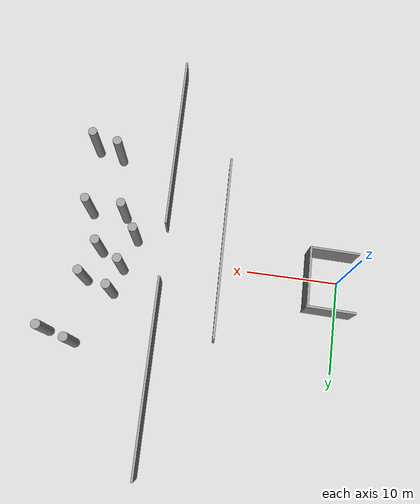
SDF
<sdf version="1.6">
 <world name="default">
  <model name="ground_plane">
   <static>1</static>
   <link name="link">
    <collision name="collision">
     <geometry><plane><normal>0 0 1</normal><size>200 200</size></plane></geometry>
     <surface><friction><ode><mu>100</mu><mu2>50</mu2></ode></friction></surface>
    </collision>
    <visual name="visual">
     <cast_shadows>0</cast_shadows>
     <geometry><plane><normal>0 0 1</normal><size>200 200</size></plane></geometry>
     <material>
      <script><uri>file://media/materials/scripts/gazebo.material</uri><name>Gazebo/Grey</name></script>
     </material>
    </visual>
    <gravity>0</gravity>
   </link>
  </model>
  <model name="unit_box_0_0_clone_0_clone_clone">
   <static>1</static>
   <pose>20.034 -13.669 1.66667 -0.000226 9e-06 0.034061</pose>
   <link name="link">
    <inertial>
     <mass>1</mass>
     <inertia>
      <ixx>0.166667</ixx>
      <ixy>0</ixy>
      <ixz>0</ixz>
      <iyy>0.166667</iyy>
      <iyz>0</iyz>
      <izz>0.166667</izz>
     </inertia>
    </inertial>
    <collision name="collision">
     <geometry><box><size>0.237691 20.4927 3.33454</size></box></geometry>
     <surface><contact><collide_without_contact>1</collide_without_contact></contact></surface>
    </collision>
    <visual name="visual">
     <geometry><box><size>0.237691 20.4927 3.33454</size></box></geometry>
     <material>
      <script><name>Gazebo/Grey</name><uri>file://media/materials/scripts/gazebo.material</uri></script>
     </material>
    </visual>
    <gravity>0</gravity>
   </link>
  </model>
  <model name="unit_box_0_0_clone_0_clone_clone_0_clone_clone">
   <static>1</static>
   <pose>3.56833 0.275438 1.66667 -0.000226 6e-06 0.022264</pose>
   <link name="link">
    <inertial>
     <mass>1</mass>
     <inertia>
      <ixx>0.166667</ixx>
      <ixy>0</ixy>
      <ixz>0</ixz>
      <iyy>0.166667</iyy>
      <iyz>0</iyz>
      <izz>0.166667</izz>
     </inertia>
    </inertial>
    <collision name="collision">
     <geometry><box><size>0.237691 6.53987 3.33454</size></box></geometry>
     <surface><contact><collide_without_contact>1</collide_without_contact></contact></surface>
    </collision>
    <visual name="visual">
     <geometry><box><size>0.237691 6.53987 3.33454</size></box></geometry>
     <material>
      <script><name>Gazebo/Grey</name><uri>file://media/materials/scripts/gazebo.material</uri></script>
     </material>
    </visual>
    <gravity>0</gravity>
   </link>
  </model>
  <model name="unit_cylinder_0_clone_14_clone_9">
   <static>1</static>
   <pose>30.626 9.6448 2.40172 0 -0 0.001073</pose>
   <link name="link">
    <inertial>
     <mass>1</mass>
     <inertia><ixx>0.145833</ixx><ixy>0</ixy><ixz>0</ixz><iyy>0.145833</iyy><iyz>0</iyz><izz>0.125</izz></inertia>
    </inertial>
    <collision name="collision">
     <geometry><cylinder><radius>0.5</radius><length>6.03342</length></cylinder></geometry>
     <surface><contact><collide_without_contact>1</collide_without_contact></contact></surface>
    </collision>
    <visual name="visual">
     <geometry><cylinder><radius>0.5</radius><length>6.03342</length></cylinder></geometry>
     <material>
      <script><name>Gazebo/Grey</name><uri>file://media/materials/scripts/gazebo.material</uri></script>
     </material>
    </visual>
    <gravity>0</gravity>
   </link>
  </model>
  <model name="unit_cylinder_0_clone_14_clone_10">
   <static>1</static>
   <pose>27.6346 10.4863 2.40172 0 -0 0.001073</pose>
   <link name="link">
    <inertial>
     <mass>1</mass>
     <inertia><ixx>0.145833</ixx><ixy>0</ixy><ixz>0</ixz><iyy>0.145833</iyy><iyz>0</iyz><izz>0.125</izz></inertia>
    </inertial>
    <collision name="collision">
     <geometry><cylinder><radius>0.5</radius><length>6.03342</length></cylinder></geometry>
     <surface><contact><collide_without_contact>1</collide_without_contact></contact></surface>
    </collision>
    <visual name="visual">
     <geometry><cylinder><radius>0.5</radius><length>6.03342</length></cylinder></geometry>
     <material>
      <script><name>Gazebo/Grey</name><uri>file://media/materials/scripts/gazebo.material</uri></script>
     </material>
    </visual>
    <gravity>0</gravity>
   </link>
  </model>
  <model name="unit_cylinder_0_clone_14_clone_13">
   <static>1</static>
   <pose>29.184 -12.1897 2.40172 0 -0 0.001073</pose>
   <link name="link">
    <inertial>
     <mass>1</mass>
     <inertia><ixx>0.145833</ixx><ixy>0</ixy><ixz>0</ixz><iyy>0.145833</iyy><iyz>0</iyz><izz>0.125</izz></inertia>
    </inertial>
    <collision name="collision">
     <geometry><cylinder><radius>0.5</radius><length>6.03342</length></cylinder></geometry>
     <surface><contact><collide_without_contact>1</collide_without_contact></contact></surface>
    </collision>
    <visual name="visual">
     <geometry><cylinder><radius>0.5</radius><length>6.03342</length></cylinder></geometry>
     <material>
      <script><name>Gazebo/Grey</name><uri>file://media/materials/scripts/gazebo.material</uri></script>
     </material>
    </visual>
    <gravity>0</gravity>
   </link>
  </model>
  <model name="unit_cylinder_0_clone_14_clone_14">
   <static>1</static>
   <pose>26.2784 -11.4682 2.40172 0 -0 0.001073</pose>
   <link name="link">
    <inertial>
     <mass>1</mass>
     <inertia><ixx>0.145833</ixx><ixy>0</ixy><ixz>0</ixz><iyy>0.145833</iyy><iyz>0</iyz><izz>0.125</izz></inertia>
    </inertial>
    <collision name="collision">
     <geometry><cylinder><radius>0.5</radius><length>6.03342</length></cylinder></geometry>
     <surface><contact><collide_without_contact>1</collide_without_contact></contact></surface>
    </collision>
    <visual name="visual">
     <geometry><cylinder><radius>0.5</radius><length>6.03342</length></cylinder></geometry>
     <material>
      <script><name>Gazebo/Grey</name><uri>file://media/materials/scripts/gazebo.material</uri></script>
     </material>
    </visual>
    <gravity>0</gravity>
   </link>
  </model>
  <model name="unit_box_0_0_clone_0_clone_clone_clone">
   <static>1</static>
   <pose>19.0842 12.813 1.66667 -0.000226 9e-06 0.034061</pose>
   <link name="link">
    <inertial>
     <mass>1</mass>
     <inertia>
      <ixx>0.166667</ixx>
      <ixy>0</ixy>
      <ixz>0</ixz>
      <iyy>0.166667</iyy>
      <iyz>0</iyz>
      <izz>0.166667</izz>
     </inertia>
    </inertial>
    <collision name="collision">
     <geometry><box><size>0.237691 20.4927 3.33454</size></box></geometry>
     <surface><contact><collide_without_contact>1</collide_without_contact></contact></surface>
    </collision>
    <visual name="visual">
     <geometry><box><size>0.237691 20.4927 3.33454</size></box></geometry>
     <material>
      <script><name>Gazebo/Grey</name><uri>file://media/materials/scripts/gazebo.material</uri></script>
     </material>
    </visual>
    <gravity>0</gravity>
   </link>
  </model>
  <model name="unit_box_0_0_clone_0_clone_clone_0_clone_clone_clone_clone">
   <static>1</static>
   <pose>1.05764 -2.86138 1.66667 -2e-06 0.000226 1.55672</pose>
   <link name="link">
    <inertial>
     <mass>1</mass>
     <inertia>
      <ixx>0.166667</ixx>
      <ixy>0</ixy>
      <ixz>0</ixz>
      <iyy>0.166667</iyy>
      <iyz>0</iyz>
      <izz>0.166667</izz>
     </inertia>
    </inertial>
    <collision name="collision">
     <geometry><box><size>0.237691 5.28913 3.33454</size></box></geometry>
     <surface><contact><collide_without_contact>1</collide_without_contact></contact></surface>
    </collision>
    <visual name="visual">
     <geometry><box><size>0.237691 5.28913 3.33454</size></box></geometry>
     <material>
      <script><name>Gazebo/Grey</name><uri>file://media/materials/scripts/gazebo.material</uri></script>
     </material>
    </visual>
    <gravity>0</gravity>
   </link>
  </model>
  <model name="unit_cylinder_0_clone_14_clone_9_clone">
   <static>1</static>
   <pose>27.6139 3.55096 2.40172 0 -0 0.001073</pose>
   <link name="link">
    <inertial>
     <mass>1</mass>
     <inertia><ixx>0.145833</ixx><ixy>0</ixy><ixz>0</ixz><iyy>0.145833</iyy><iyz>0</iyz><izz>0.125</izz></inertia>
    </inertial>
    <collision name="collision">
     <geometry><cylinder><radius>0.5</radius><length>6.03342</length></cylinder></geometry>
     <surface><contact><collide_without_contact>1</collide_without_contact></contact></surface>
    </collision>
    <visual name="visual">
     <geometry><cylinder><radius>0.5</radius><length>6.03342</length></cylinder></geometry>
     <material>
      <script><name>Gazebo/Grey</name><uri>file://media/materials/scripts/gazebo.material</uri></script>
     </material>
    </visual>
    <gravity>0</gravity>
   </link>
  </model>
  <model name="unit_cylinder_0_clone_14_clone_9_clone_0">
   <static>1</static>
   <pose>28.4771 -4.34225 2.40172 0 -0 0.001073</pose>
   <link name="link">
    <inertial>
     <mass>1</mass>
     <inertia><ixx>0.145833</ixx><ixy>0</ixy><ixz>0</ixz><iyy>0.145833</iyy><iyz>0</iyz><izz>0.125</izz></inertia>
    </inertial>
    <collision name="collision">
     <geometry><cylinder><radius>0.5</radius><length>6.03342</length></cylinder></geometry>
     <surface><contact><collide_without_contact>1</collide_without_contact></contact></surface>
    </collision>
    <visual name="visual">
     <geometry><cylinder><radius>0.5</radius><length>6.03342</length></cylinder></geometry>
     <material>
      <script><name>Gazebo/Grey</name><uri>file://media/materials/scripts/gazebo.material</uri></script>
     </material>
    </visual>
    <gravity>0</gravity>
   </link>
  </model>
  <model name="unit_cylinder_0_clone_14_clone_9_clone_1">
   <static>1</static>
   <pose>24.5651 -4.32645 2.40172 0 -0 0.001073</pose>
   <link name="link">
    <inertial>
     <mass>1</mass>
     <inertia><ixx>0.145833</ixx><ixy>0</ixy><ixz>0</ixz><iyy>0.145833</iyy><iyz>0</iyz><izz>0.125</izz></inertia>
    </inertial>
    <collision name="collision">
     <geometry><cylinder><radius>0.5</radius><length>6.03342</length></cylinder></geometry>
     <surface><contact><collide_without_contact>1</collide_without_contact></contact></surface>
    </collision>
    <visual name="visual">
     <geometry><cylinder><radius>0.5</radius><length>6.03342</length></cylinder></geometry>
     <material>
      <script><name>Gazebo/Grey</name><uri>file://media/materials/scripts/gazebo.material</uri></script>
     </material>
    </visual>
    <gravity>0</gravity>
   </link>
  </model>
  <model name="unit_cylinder_0_clone_14_clone_9_clone_2">
   <static>1</static>
   <pose>24.4719 4.62219 2.40172 0 -0 0.001073</pose>
   <link name="link">
    <inertial>
     <mass>1</mass>
     <inertia><ixx>0.145833</ixx><ixy>0</ixy><ixz>0</ixz><iyy>0.145833</iyy><iyz>0</iyz><izz>0.125</izz></inertia>
    </inertial>
    <collision name="collision">
     <geometry><cylinder><radius>0.5</radius><length>6.03342</length></cylinder></geometry>
     <surface><contact><collide_without_contact>1</collide_without_contact></contact></surface>
    </collision>
    <visual name="visual">
     <geometry><cylinder><radius>0.5</radius><length>6.03342</length></cylinder></geometry>
     <material>
      <script><name>Gazebo/Grey</name><uri>file://media/materials/scripts/gazebo.material</uri></script>
     </material>
    </visual>
    <gravity>0</gravity>
   </link>
  </model>
  <model name="unit_cylinder_0_clone_14_clone_9_clone_3">
   <static>1</static>
   <pose>26.5113 0.096108 2.40172 0 -0 0.001073</pose>
   <link name="link">
    <inertial>
     <mass>1</mass>
     <inertia><ixx>0.145833</ixx><ixy>0</ixy><ixz>0</ixz><iyy>0.145833</iyy><iyz>0</iyz><izz>0.125</izz></inertia>
    </inertial>
    <collision name="collision">
     <geometry><cylinder><radius>0.5</radius><length>6.03342</length></cylinder></geometry>
     <surface><contact><collide_without_contact>1</collide_without_contact></contact></surface>
    </collision>
    <visual name="visual">
     <geometry><cylinder><radius>0.5</radius><length>6.03342</length></cylinder></geometry>
     <material>
      <script><name>Gazebo/Grey</name><uri>file://media/materials/scripts/gazebo.material</uri></script>
     </material>
    </visual>
    <gravity>0</gravity>
   </link>
  </model>
  <model name="unit_cylinder_0_clone_14_clone_9_clone_5">
   <static>1</static>
   <pose>23.8422 1.77062 2.40172 0 -0 0.001073</pose>
   <link name="link">
    <inertial>
     <mass>1</mass>
     <inertia><ixx>0.145833</ixx><ixy>0</ixy><ixz>0</ixz><iyy>0.145833</iyy><iyz>0</iyz><izz>0.125</izz></inertia>
    </inertial>
    <collision name="collision">
     <geometry><cylinder><radius>0.5</radius><length>6.03342</length></cylinder></geometry>
     <surface><contact><collide_without_contact>1</collide_without_contact></contact></surface>
    </collision>
    <visual name="visual">
     <geometry><cylinder><radius>0.5</radius><length>6.03342</length></cylinder></geometry>
     <material>
      <script><name>Gazebo/Grey</name><uri>file://media/materials/scripts/gazebo.material</uri></script>
     </material>
    </visual>
    <gravity>0</gravity>
   </link>
  </model>
  <model name="unit_cylinder_0_clone_14_clone_9_clone_6">
   <static>1</static>
   <pose>22.8365 -1.77482 2.40172 0 -0 0.001073</pose>
   <link name="link">
    <inertial>
     <mass>1</mass>
     <inertia><ixx>0.145833</ixx><ixy>0</ixy><ixz>0</ixz><iyy>0.145833</iyy><iyz>0</iyz><izz>0.125</izz></inertia>
    </inertial>
    <collision name="collision">
     <geometry><cylinder><radius>0.5</radius><length>6.03342</length></cylinder></geometry>
     <surface><contact><collide_without_contact>1</collide_without_contact></contact></surface>
    </collision>
    <visual name="visual">
     <geometry><cylinder><radius>0.5</radius><length>6.03342</length></cylinder></geometry>
     <material>
      <script><name>Gazebo/Grey</name><uri>file://media/materials/scripts/gazebo.material</uri></script>
     </material>
    </visual>
    <gravity>0</gravity>
   </link>
  </model>
  <model name="unit_box_0_0_clone_0_clone_clone_clone_0">
   <static>1</static>
   <pose>13.1506 -1.84884 1.66667 -0.000226 9e-06 0.034061</pose>
   <link name="link">
    <inertial>
     <mass>1</mass>
     <inertia>
      <ixx>0.166667</ixx>
      <ixy>0</ixy>
      <ixz>0</ixz>
      <iyy>0.166667</iyy>
      <iyz>0</iyz>
      <izz>0.166667</izz>
     </inertia>
    </inertial>
    <collision name="collision">
     <geometry><box><size>0.237691 20.4927 3.33454</size></box></geometry>
     <surface><contact><collide_without_contact>1</collide_without_contact></contact></surface>
    </collision>
    <visual name="visual">
     <geometry><box><size>0.237691 20.4927 3.33454</size></box></geometry>
     <material>
      <script><name>Gazebo/Grey</name><uri>file://media/materials/scripts/gazebo.material</uri></script>
     </material>
    </visual>
    <gravity>0</gravity>
   </link>
  </model>
  <model name="unit_box_0_0_clone_0_clone_clone_0_clone_clone_clone_clone_clone">
   <static>1</static>
   <pose>1.02378 3.62855 1.66667 -2e-06 0.000226 1.55672</pose>
   <link name="link">
    <inertial>
     <mass>1</mass>
     <inertia>
      <ixx>0.166667</ixx>
      <ixy>0</ixy>
      <ixz>0</ixz>
      <iyy>0.166667</iyy>
      <iyz>0</iyz>
      <izz>0.166667</izz>
     </inertia>
    </inertial>
    <collision name="collision">
     <geometry><box><size>0.237691 5.28913 3.33454</size></box></geometry>
     <surface><contact><collide_without_contact>1</collide_without_contact></contact></surface>
    </collision>
    <visual name="visual">
     <geometry><box><size>0.237691 5.28913 3.33454</size></box></geometry>
     <material>
      <script><name>Gazebo/Grey</name><uri>file://media/materials/scripts/gazebo.material</uri></script>
     </material>
    </visual>
    <gravity>0</gravity>
   </link>
  </model>
 </world>
</sdf>
